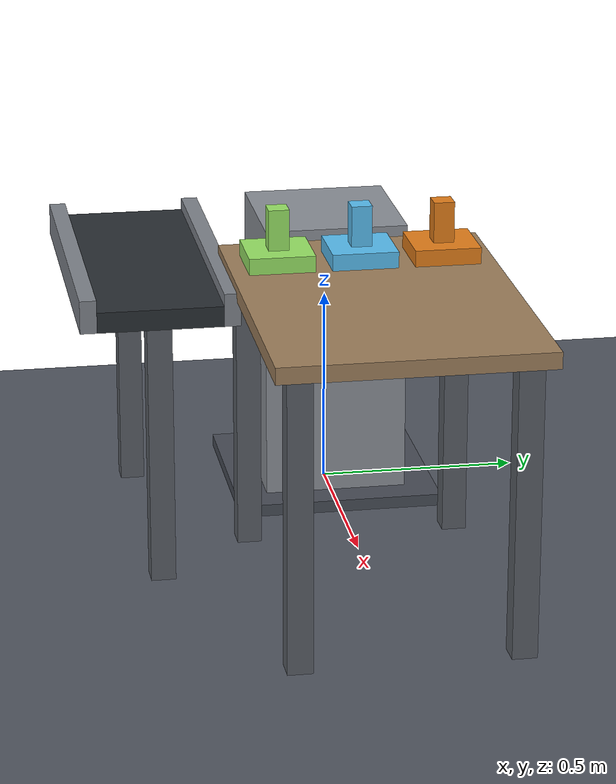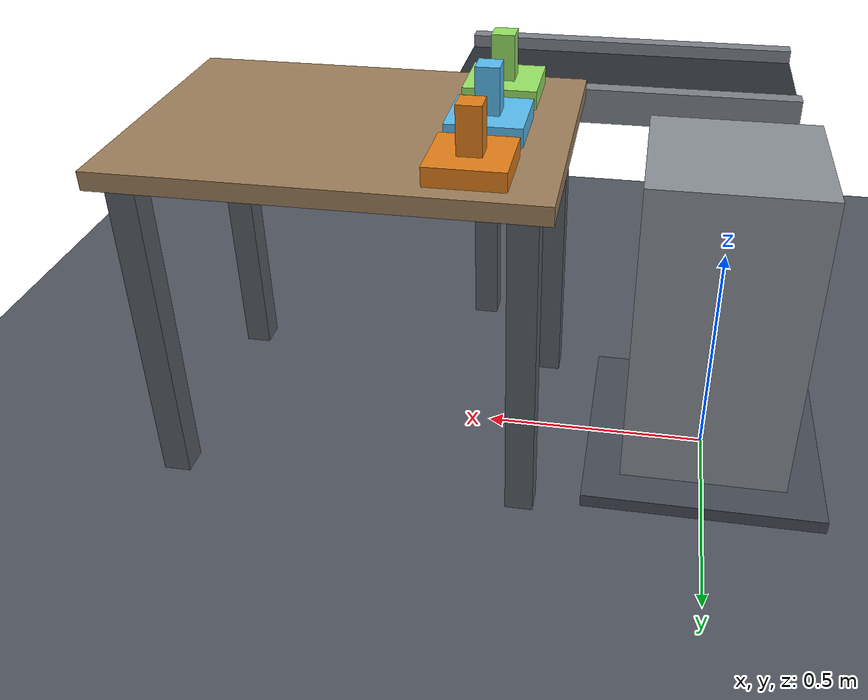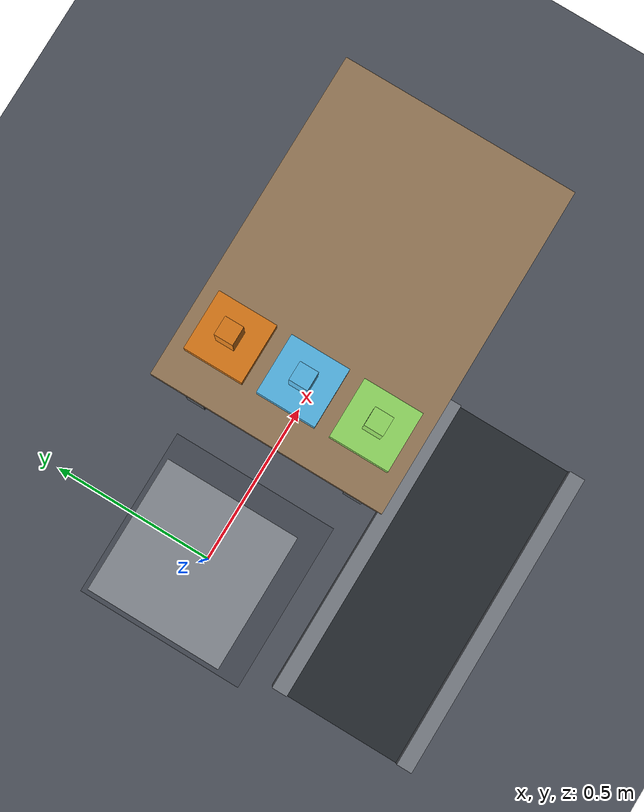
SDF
<?xml version="1.0" ?>
<sdf version="1.9">
  <world name="forstick2_fr3_2f85_workcell">
    <physics name="1ms" type="ignored">
      <max_step_size>0.001</max_step_size>
      <real_time_factor>1.0</real_time_factor>
    </physics>
    <plugin filename="gz-sim-physics-system" name="gz::sim::systems::Physics"/>
    <plugin filename="gz-sim-user-commands-system"
            name="gz::sim::systems::UserCommands"/>
    <plugin filename="gz-sim-scene-broadcaster-system"
            name="gz::sim::systems::SceneBroadcaster"/>
    <plugin filename="gz-sim-contact-system"
            name="gz::sim::systems::Contact"/>
    <plugin filename="gz-sim-sensors-system"
            name="gz::sim::systems::Sensors">
      <render_engine>ogre2</render_engine>
    </plugin>

    <light type="directional" name="sun">
      <cast_shadows>false</cast_shadows>
      <pose>0 0 6 0 0 0</pose>
      <diffuse>0.9 0.9 0.9 1</diffuse>
      <specular>0.2 0.2 0.2 1</specular>
      <direction>-0.4 0.3 -0.9</direction>
    </light>

  <model name="floor">
    <static>true</static>
    <link name="link">
      <collision name="collision">
        <geometry><plane><normal>0 0 1</normal><size>8.0 8.0</size></plane></geometry>
      </collision>
      <visual name="visual">
        <geometry><plane><normal>0 0 1</normal><size>8.0 8.0</size></plane></geometry>
        <material>
          <ambient>0.256 0.272 0.30400000000000005 1.0</ambient>
          <diffuse>0.32 0.34 0.38 1.0</diffuse>
        </material>
      </visual>
    </link>
  </model>
  <model name="robot_pedestal">
    <static>true</static>
    <pose>0.0 0.0 0.0 0 0 0</pose>
    <link name="base_plate">
      <pose>0.0 0.0 0.015 0 0 0</pose>
      <collision name="base_plate_collision">
        <geometry><box><size>0.52 0.52 0.03</size></box></geometry>
        <surface>
          <contact><collide_bitmask>1</collide_bitmask></contact>
        </surface>
      </collision>
      <visual name="base_plate_visual">
        <geometry><box><size>0.52 0.52 0.03</size></box></geometry>
        <material>
          <ambient>0.168 0.18 0.20400000000000001 1.0</ambient>
          <diffuse>0.28 0.3 0.34 1.0</diffuse>
        </material>
      </visual>
    </link>
    <link name="column">
      <pose>0.0 0.0 0.38 0 0 0</pose>
      <collision name="column_collision">
        <geometry><box><size>0.36 0.36 0.7</size></box></geometry>
        <surface>
          <contact><collide_bitmask>1</collide_bitmask></contact>
        </surface>
      </collision>
      <visual name="column_visual">
        <geometry><box><size>0.36 0.36 0.7</size></box></geometry>
        <material>
          <ambient>0.33 0.34199999999999997 0.36 1.0</ambient>
          <diffuse>0.55 0.57 0.6 1.0</diffuse>
        </material>
      </visual>
    </link>
  </model>
  <model name="workbench">
    <static>true</static>
    <pose>0.78 0.0 0.0 0 0 0</pose>
    <link name="top">
      <pose>0.0 0.0 0.73 0 0 0</pose>
      <collision name="top_collision">
        <geometry><box><size>0.9 0.64 0.04</size></box></geometry>
        <surface>
          <contact><collide_bitmask>1</collide_bitmask></contact>
        </surface>
      </collision>
      <visual name="top_visual">
        <geometry><box><size>0.9 0.64 0.04</size></box></geometry>
        <material>
          <ambient>0.372 0.3 0.216 1.0</ambient>
          <diffuse>0.62 0.5 0.36 1.0</diffuse>
        </material>
      </visual>
    </link>
    <link name="leg_front_left">
      <pose>0.39 0.26 0.355 0 0 0</pose>
      <collision name="leg_front_left_collision">
        <geometry><box><size>0.06 0.06 0.71</size></box></geometry>
        <surface>
          <contact><collide_bitmask>1</collide_bitmask></contact>
        </surface>
      </collision>
      <visual name="leg_front_left_visual">
        <geometry><box><size>0.06 0.06 0.71</size></box></geometry>
        <material>
          <ambient>0.21 0.222 0.24 1.0</ambient>
          <diffuse>0.35 0.37 0.4 1.0</diffuse>
        </material>
      </visual>
    </link>
    <link name="leg_front_right">
      <pose>0.39 -0.26 0.355 0 0 0</pose>
      <collision name="leg_front_right_collision">
        <geometry><box><size>0.06 0.06 0.71</size></box></geometry>
        <surface>
          <contact><collide_bitmask>1</collide_bitmask></contact>
        </surface>
      </collision>
      <visual name="leg_front_right_visual">
        <geometry><box><size>0.06 0.06 0.71</size></box></geometry>
        <material>
          <ambient>0.21 0.222 0.24 1.0</ambient>
          <diffuse>0.35 0.37 0.4 1.0</diffuse>
        </material>
      </visual>
    </link>
    <link name="leg_back_left">
      <pose>-0.39 0.26 0.355 0 0 0</pose>
      <collision name="leg_back_left_collision">
        <geometry><box><size>0.06 0.06 0.71</size></box></geometry>
        <surface>
          <contact><collide_bitmask>1</collide_bitmask></contact>
        </surface>
      </collision>
      <visual name="leg_back_left_visual">
        <geometry><box><size>0.06 0.06 0.71</size></box></geometry>
        <material>
          <ambient>0.21 0.222 0.24 1.0</ambient>
          <diffuse>0.35 0.37 0.4 1.0</diffuse>
        </material>
      </visual>
    </link>
    <link name="leg_back_right">
      <pose>-0.39 -0.26 0.355 0 0 0</pose>
      <collision name="leg_back_right_collision">
        <geometry><box><size>0.06 0.06 0.71</size></box></geometry>
        <surface>
          <contact><collide_bitmask>1</collide_bitmask></contact>
        </surface>
      </collision>
      <visual name="leg_back_right_visual">
        <geometry><box><size>0.06 0.06 0.71</size></box></geometry>
        <material>
          <ambient>0.21 0.222 0.24 1.0</ambient>
          <diffuse>0.35 0.37 0.4 1.0</diffuse>
        </material>
      </visual>
    </link>
  </model>
  <model name="pallet_1">
    <static>true</static>
    <pose>0.5 0.2 0.79 0 0 0</pose>
    <link name="tray">
      <pose>0.0 0.0 -0.02 0 0 0</pose>
      <collision name="tray_collision">
        <geometry><box><size>0.16 0.16 0.04</size></box></geometry>
        <surface>
          <contact><collide_bitmask>1</collide_bitmask></contact>
        </surface>
      </collision>
      <visual name="tray_visual">
        <geometry><box><size>0.16 0.16 0.04</size></box></geometry>
        <material>
          <ambient>0.54 0.3 0.06 1.0</ambient>
          <diffuse>0.9 0.5 0.1 1.0</diffuse>
        </material>
      </visual>
    </link>
  </model>
  <model name="pallet_2">
    <static>true</static>
    <pose>0.5 0.0 0.79 0 0 0</pose>
    <link name="tray">
      <pose>0.0 0.0 -0.02 0 0 0</pose>
      <collision name="tray_collision">
        <geometry><box><size>0.16 0.16 0.04</size></box></geometry>
        <surface>
          <contact><collide_bitmask>1</collide_bitmask></contact>
        </surface>
      </collision>
      <visual name="tray_visual">
        <geometry><box><size>0.16 0.16 0.04</size></box></geometry>
        <material>
          <ambient>0.21 0.44999999999999996 0.57 1.0</ambient>
          <diffuse>0.35 0.75 0.95 1.0</diffuse>
        </material>
      </visual>
    </link>
  </model>
  <model name="pallet_3">
    <static>true</static>
    <pose>0.5 -0.2 0.79 0 0 0</pose>
    <link name="tray">
      <pose>0.0 0.0 -0.02 0 0 0</pose>
      <collision name="tray_collision">
        <geometry><box><size>0.16 0.16 0.04</size></box></geometry>
        <surface>
          <contact><collide_bitmask>1</collide_bitmask></contact>
        </surface>
      </collision>
      <visual name="tray_visual">
        <geometry><box><size>0.16 0.16 0.04</size></box></geometry>
        <material>
          <ambient>0.36 0.54 0.24 1.0</ambient>
          <diffuse>0.6 0.9 0.4 1.0</diffuse>
        </material>
      </visual>
    </link>
  </model>
  <model name="conveyor">
    <static>true</static>
    <pose>0.25 -0.5 0.7 0 0 0</pose>
    <link name="belt">
      <pose>0.0 0.0 -0.025 0 0 0</pose>
      <collision name="belt_collision">
        <geometry><box><size>0.8 0.3 0.05</size></box></geometry>
        <surface>
          <contact><collide_bitmask>1</collide_bitmask></contact>
        </surface>
      </collision>
      <visual name="belt_visual">
        <geometry><box><size>0.8 0.3 0.05</size></box></geometry>
        <material>
          <ambient>0.096 0.108 0.12 1.0</ambient>
          <diffuse>0.16 0.18 0.2 1.0</diffuse>
        </material>
      </visual>
    </link>
    <link name="frame_left">
      <pose>0.0 0.17 -0.01 0 0 0</pose>
      <collision name="frame_left_collision">
        <geometry><box><size>0.8 0.04 0.08</size></box></geometry>
        <surface>
          <contact><collide_bitmask>1</collide_bitmask></contact>
        </surface>
      </collision>
      <visual name="frame_left_visual">
        <geometry><box><size>0.8 0.04 0.08</size></box></geometry>
        <material>
          <ambient>0.3 0.312 0.33 1.0</ambient>
          <diffuse>0.5 0.52 0.55 1.0</diffuse>
        </material>
      </visual>
    </link>
    <link name="frame_right">
      <pose>0.0 -0.17 -0.01 0 0 0</pose>
      <collision name="frame_right_collision">
        <geometry><box><size>0.8 0.04 0.08</size></box></geometry>
        <surface>
          <contact><collide_bitmask>1</collide_bitmask></contact>
        </surface>
      </collision>
      <visual name="frame_right_visual">
        <geometry><box><size>0.8 0.04 0.08</size></box></geometry>
        <material>
          <ambient>0.3 0.312 0.33 1.0</ambient>
          <diffuse>0.5 0.52 0.55 1.0</diffuse>
        </material>
      </visual>
    </link>
    <link name="leg_left">
      <pose>0.34 0.0 -0.375 0 0 0</pose>
      <collision name="leg_left_collision">
        <geometry><box><size>0.06 0.06 0.65</size></box></geometry>
        <surface>
          <contact><collide_bitmask>1</collide_bitmask></contact>
        </surface>
      </collision>
      <visual name="leg_left_visual">
        <geometry><box><size>0.06 0.06 0.65</size></box></geometry>
        <material>
          <ambient>0.21 0.222 0.24 1.0</ambient>
          <diffuse>0.35 0.37 0.4 1.0</diffuse>
        </material>
      </visual>
    </link>
    <link name="leg_right">
      <pose>-0.34 0.0 -0.375 0 0 0</pose>
      <collision name="leg_right_collision">
        <geometry><box><size>0.06 0.06 0.65</size></box></geometry>
        <surface>
          <contact><collide_bitmask>1</collide_bitmask></contact>
        </surface>
      </collision>
      <visual name="leg_right_visual">
        <geometry><box><size>0.06 0.06 0.65</size></box></geometry>
        <material>
          <ambient>0.21 0.222 0.24 1.0</ambient>
          <diffuse>0.35 0.37 0.4 1.0</diffuse>
        </material>
      </visual>
    </link>
  </model>
  <model name="material_a">
    <pose>0.5 0.2 0.8400000000000001 0 0 0</pose>
    <link name="body">
      <inertial>
        <mass>0.2</mass>
        <inertia>
          <ixx>0.00020833</ixx><iyy>0.00020833</iyy><izz>0.00008333</izz>
          <ixy>0</ixy><ixz>0</ixz><iyz>0</iyz>
        </inertia>
      </inertial>
      <collision name="collision">
        <geometry><box><size>0.05 0.05 0.1</size></box></geometry>
        <surface>
          <friction><ode><mu>0.8</mu><mu2>0.8</mu2></ode></friction>
          <contact><collide_bitmask>1</collide_bitmask></contact>
        </surface>
      </collision>
      <visual name="visual">
        <geometry><box><size>0.05 0.05 0.1</size></box></geometry>
        <material>
          <ambient>0.54 0.3 0.06 1.0</ambient>
          <diffuse>0.9 0.5 0.1 1.0</diffuse>
        </material>
      </visual>
    </link>
  </model>
  <model name="material_b">
    <pose>0.5 0.0 0.8400000000000001 0 0 0</pose>
    <link name="body">
      <inertial>
        <mass>0.2</mass>
        <inertia>
          <ixx>0.00020833</ixx><iyy>0.00020833</iyy><izz>0.00008333</izz>
          <ixy>0</ixy><ixz>0</ixz><iyz>0</iyz>
        </inertia>
      </inertial>
      <collision name="collision">
        <geometry><box><size>0.05 0.05 0.1</size></box></geometry>
        <surface>
          <friction><ode><mu>0.8</mu><mu2>0.8</mu2></ode></friction>
          <contact><collide_bitmask>1</collide_bitmask></contact>
        </surface>
      </collision>
      <visual name="visual">
        <geometry><box><size>0.05 0.05 0.1</size></box></geometry>
        <material>
          <ambient>0.21 0.44999999999999996 0.57 1.0</ambient>
          <diffuse>0.35 0.75 0.95 1.0</diffuse>
        </material>
      </visual>
    </link>
  </model>
  <model name="material_c">
    <pose>0.5 -0.2 0.8400000000000001 0 0 0</pose>
    <link name="body">
      <inertial>
        <mass>0.2</mass>
        <inertia>
          <ixx>0.00020833</ixx><iyy>0.00020833</iyy><izz>0.00008333</izz>
          <ixy>0</ixy><ixz>0</ixz><iyz>0</iyz>
        </inertia>
      </inertial>
      <collision name="collision">
        <geometry><box><size>0.05 0.05 0.1</size></box></geometry>
        <surface>
          <friction><ode><mu>0.8</mu><mu2>0.8</mu2></ode></friction>
          <contact><collide_bitmask>1</collide_bitmask></contact>
        </surface>
      </collision>
      <visual name="visual">
        <geometry><box><size>0.05 0.05 0.1</size></box></geometry>
        <material>
          <ambient>0.36 0.54 0.24 1.0</ambient>
          <diffuse>0.6 0.9 0.4 1.0</diffuse>
        </material>
      </visual>
    </link>
  </model>
  <model name="scene_camera">
    <static>true</static>
    <pose>1.375 -2.282 1.313 0 0.2800 2.0000</pose>
    <link name="link">
      <sensor name="camera" type="camera">
        <update_rate>6.0</update_rate>
        <always_on>1</always_on>
        <camera>
          <horizontal_fov>1.047</horizontal_fov>
          <image><width>480</width><height>360</height></image>
          <clip><near>0.05</near><far>30</far></clip>
        </camera>
      </sensor>
    </link>
  </model>

    <gui fullscreen="0">
      <plugin filename="MinimalScene" name="3D View">
        <gz-gui>
          <title>forstick2 · FR3-WMS + 2F-85 workcell</title>
          <property type="bool" key="showTitleBar">false</property>
        </gz-gui>
        <!-- 실행 스크립트의 GUI 렌더 엔진 인자와 맞춘다. -->
        <engine>ogre2</engine>
        <scene>scene</scene>
        <ambient_light>0.5 0.5 0.5</ambient_light>
        <background_color>0.18 0.20 0.24</background_color>
        <camera_pose>1.375 -2.282 1.313 0 0.2800 2.0000</camera_pose>
      </plugin>
      <plugin filename="GzSceneManager" name="Scene Manager"/>
      <!-- 화면에 실제로 무엇이 그려지는지 파일로 확인한다.
           /gui/screenshot 서비스는 인자를 디렉터리로 받는다. -->
      <plugin filename="Screenshot" name="Screenshot"/>
      <plugin filename="InteractiveViewControl" name="Interactive view control"/>
      <plugin filename="CameraTracking" name="Camera Tracking"/>
      <plugin filename="WorldControl" name="World control">
        <gz-gui>
          <anchors target="3D View">
            <line own="left" target="left"/>
            <line own="bottom" target="bottom"/>
          </anchors>
        </gz-gui>
        <use_event>true</use_event>
      </plugin>
      <plugin filename="WorldStats" name="World stats">
        <gz-gui>
          <anchors target="3D View">
            <line own="right" target="right"/>
            <line own="bottom" target="bottom"/>
          </anchors>
        </gz-gui>
      </plugin>
      <plugin filename="ComponentInspector" name="Component inspector"/>
      <plugin filename="EntityTree" name="Entity tree"/>
    </gui>
  </world>
</sdf>
